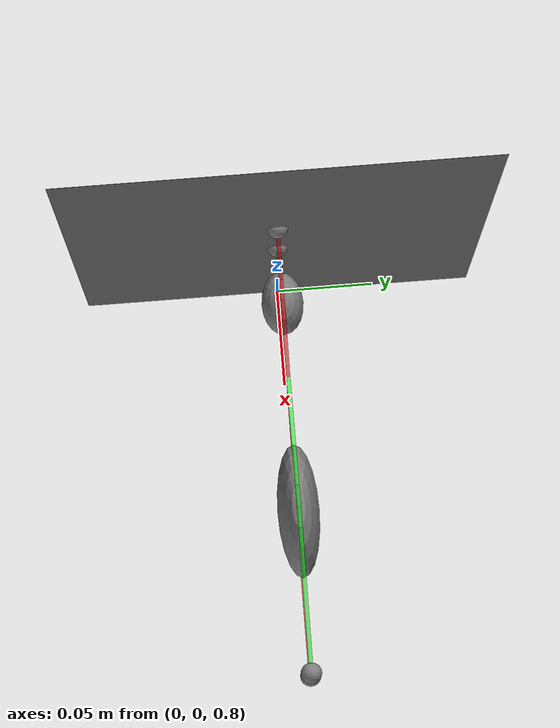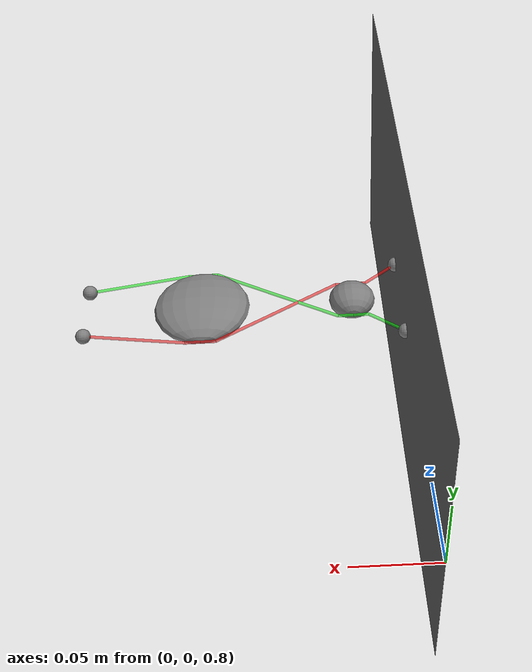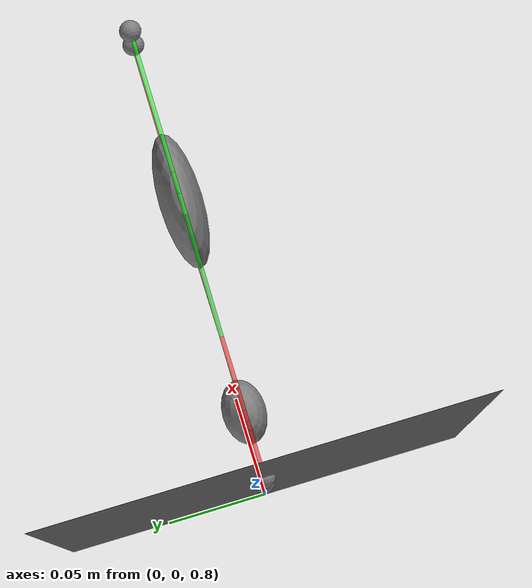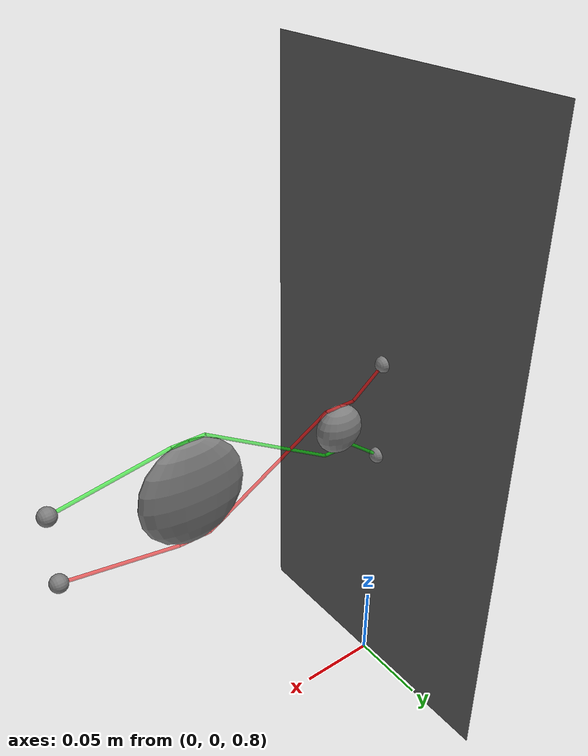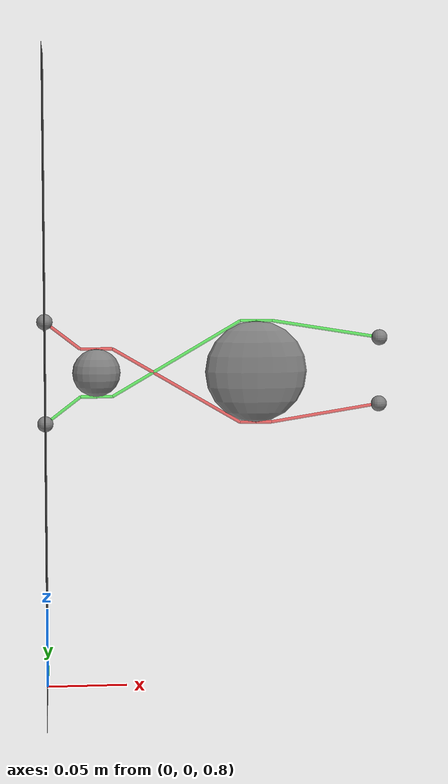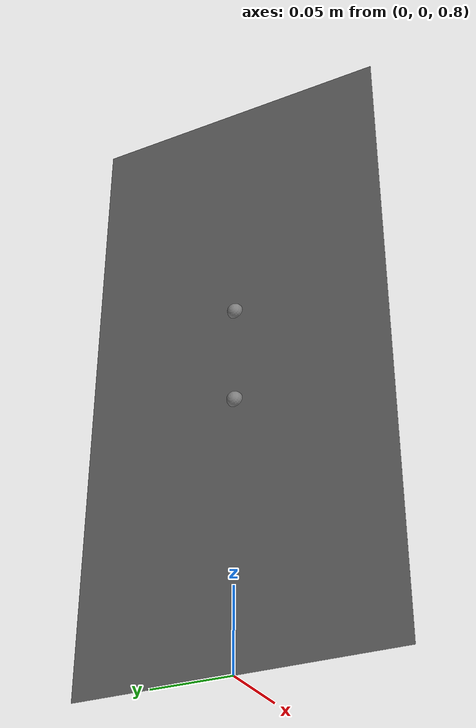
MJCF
<?xml version='1.0' encoding='UTF-8'?>
<mujoco>

	<option timestep="1e-4"/>
	<option gravity="0 0 -9.8"/>

	<asset>

        <texture name="grid" type="2d" builtin="checker" rgb1="0.1 0.1 0.1" rgb2="0.6 0.6 0.6" width="300" height="300"/>
        <material name="grid" texture="grid" texrepeat="10 10" reflectance="0.2"/>
        <material name="init_mat" rgba="0.85 0.85 0.85 1"/>
        <material name="bright_blue" rgba="0.2 0.6 1 1"/>
		<texture type="skybox" builtin="gradient" rgb1="1 1 1" rgb2="0.5 0.5 0.5" width="265" height="256"/>
	</asset>

	<worldbody>
		<light pos="0 0 10"/>
        <geom type="plane" size="1 1 0.1" material="grid"/>

		<body name="wall" pos="0 0 1" euler="0 90 0">
			<geom type="plane" size="0.2 0.1 0.2" material="grid"/>
			<site name="beginning1" pos="0.032 0 0"/>
			<site name="beginning2" pos="-0.032 0 0"/>
			<site name="end1" pos="0.021 0 0.21"/>
			<site name="end2" pos="-0.021 0 0.21"/>
		</body>

		<body name="R1" pos="0.032 0 1">
			<joint name="jointR1" type="slide" axis="0 0 1"/>
			<geom type="ellipsoid" size="0.015 0.01 0.015"/>
			<site name="R1_site" pos="0 0 0"/>

			<site name="corner1up" pos="0 0 0.015" size="0.0001"/>
			<site name="corner1upleft" pos="-0.01 0 0.015" size="0.0001"/>
			<site name="corner1upright" pos="0.01 0 0.015" size="0.0001"/>

			<site name="corner1down" pos="0 0 -0.015" size="0.0001"/>
			<site name="corner1downleft" pos="-0.01 0 -0.015" size="0.0001"/>
			<site name="corner1downright" pos="0.01 0 -0.015" size="0.0001"/>
		</body>

		<body name="R2" pos="0.132 0 1">
			<joint name="jointR2" type="slide" axis="0 0 1"/>
			<geom type="ellipsoid" size="0.032 0.01 0.032"/>
			<site name="R2_site" pos="0 0 0"/>

			<site name="corner2up" pos="0 0 0.032" size="0.0001"/>
			<site name="corner2upleft" pos="-0.01 0 0.032" size="0.0001"/>
			<site name="corner2upright" pos="0.01 0 0.032" size="0.0001"/>

			<site name="corner2down" pos="0 0 -0.032" size="0.0001"/>
			<site name="corner2downleft" pos="-0.01 0 -0.032" size="0.0001"/>
			<site name="corner2downright" pos="0.01 0 -0.032" size="0.0001"/>
		</body>
	</worldbody>

	<tendon>
		<spatial name="tendon1" width="0.001" springlength="0.1" damping="10" rgba="255 0 0 0.55">
			<site site="beginning2"/>
			<site site="corner1upleft"/>
			<site site="corner1up"/>
			<site site="corner1upright"/>
			<site site="corner2downleft"/>
			<site site="corner2down"/>
			<site site="corner2downright"/>
			<site site="end1"/>
		</spatial>
	</tendon>

	<tendon>
		<spatial name="tendon2" width="0.001" springlength="0.1" damping="10" rgba="0 255 0 0.55">
			<site site="beginning1"/>
			<site site="corner1downleft"/>
			<site site="corner1down"/>
			<site site="corner1downright"/>
			<site site="corner2upleft"/>
			<site site="corner2up"/>
			<site site="corner2upright"/>
			<site site="end2"/>
		</spatial>
	</tendon>

	<actuator>
		<position name="motor_R1" joint="jointR1"/>
		<position name="motor_R2" joint="jointR2"/>
	</actuator>

	<sensor>
		<framepos objtype="body" objname="R1"/>
		<framepos objtype="body" objname="R2"/>
	</sensor>

</mujoco>
